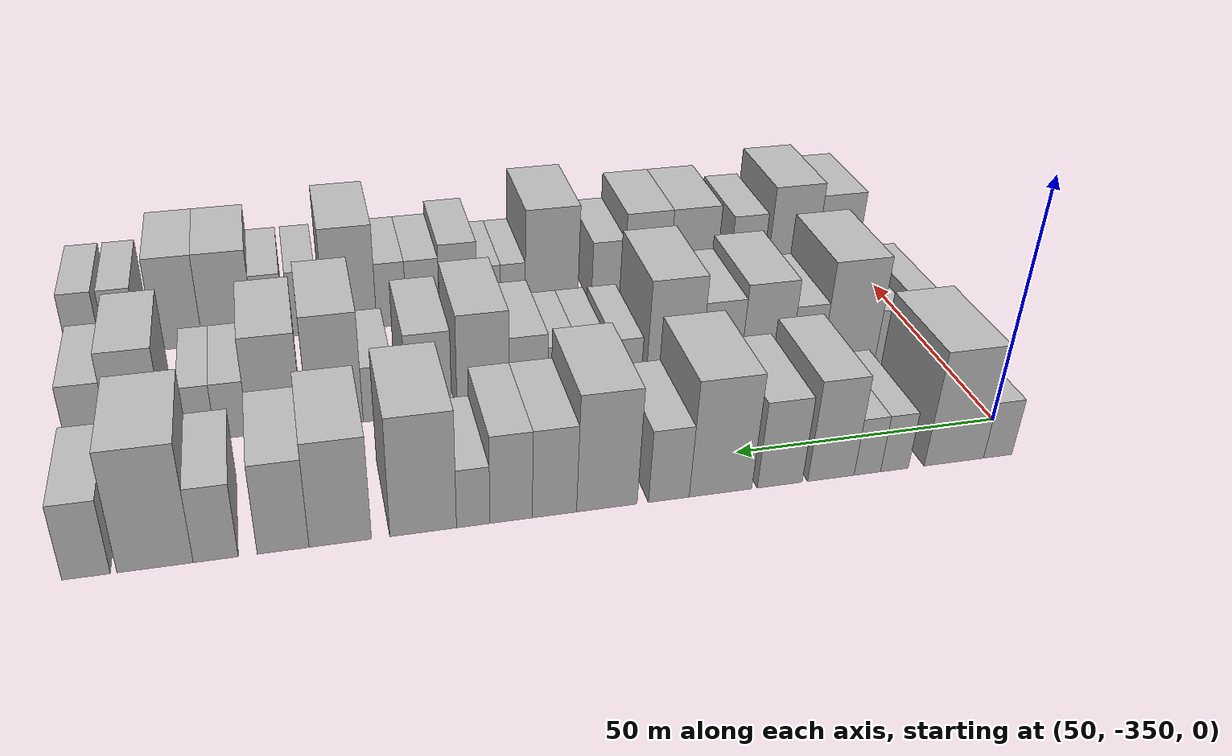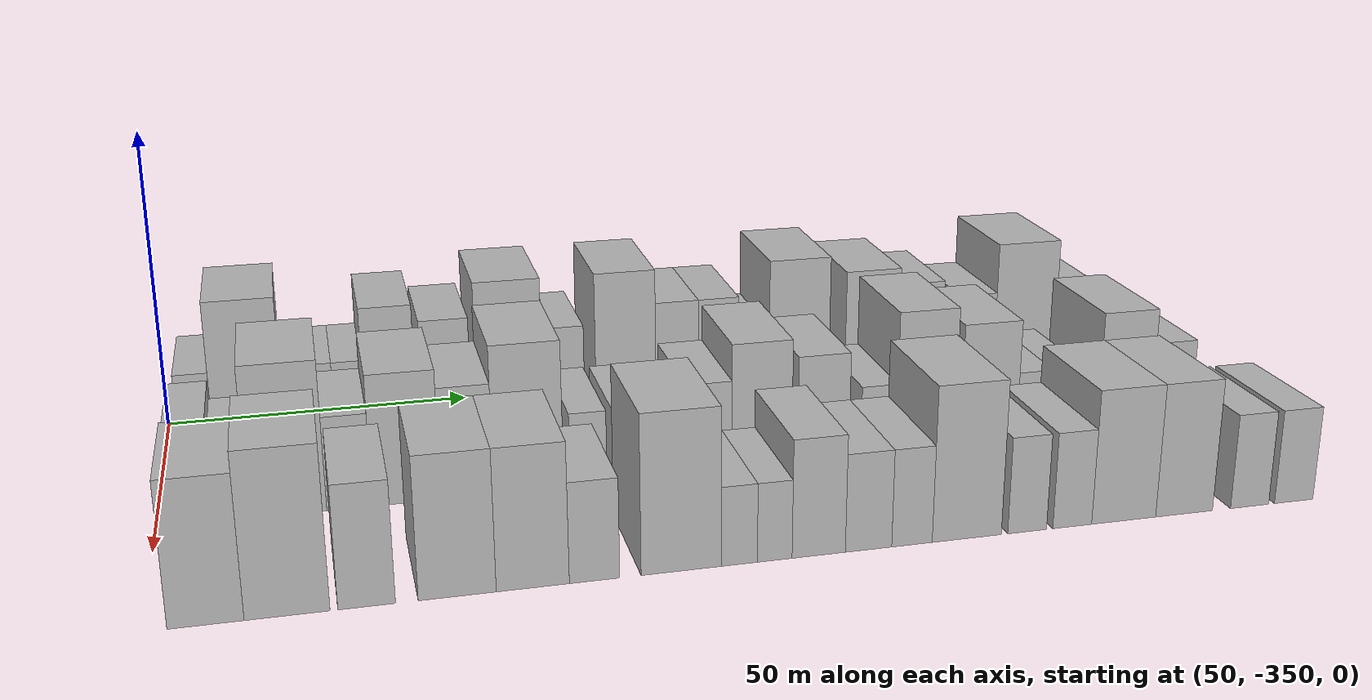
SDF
<sdf version="1.6">
 <world name="default">
  <model name="building_1">
   <static>1</static>
   <pose>50.0000 -345.2431 0 0.000000 0.000000 0.000000</pose>
   <link name="link">
    <pose>0 0 6.00 0 0 0</pose>
    <collision name="collision"><geometry><box><size>20.0000 5.5138 12.0000</size></box></geometry></collision>
    <visual name="visual">
     <cast_shadows>0</cast_shadows>
     <geometry><box><size>20.0000 5.5138 12.0000</size></box></geometry>
     <material>
      <script>
       <uri>model://HANNAS_wall/materials/scripts</uri>
       <uri>model://HANNAS_wall/materials/textures</uri>
       <name>vrc/HANNAS_wall</name>
      </script>
     </material>
    </visual>
   </link>
  </model>
  <model name="building_2">
   <static>1</static>
   <pose>50.0000 -336.7843 0 0.000000 0.000000 0.000000</pose>
   <link name="link">
    <pose>0 0 12.00 0 0 0</pose>
    <collision name="collision"><geometry><box><size>20.0000 11.4038 24.0000</size></box></geometry></collision>
    <visual name="visual">
     <cast_shadows>0</cast_shadows>
     <geometry><box><size>20.0000 11.4038 24.0000</size></box></geometry>
     <material>
      <script>
       <uri>model://HANNAS_wall/materials/scripts</uri>
       <uri>model://HANNAS_wall/materials/textures</uri>
       <name>vrc/HANNAS_wall</name>
      </script>
     </material>
    </visual>
   </link>
  </model>
  <model name="building_3">
   <static>1</static>
   <pose>50.0000 -325.4623 0 0.000000 0.000000 0.000000</pose>
   <link name="link">
    <pose>0 0 6.00 0 0 0</pose>
    <collision name="collision"><geometry><box><size>20.0000 5.2402 12.0000</size></box></geometry></collision>
    <visual name="visual">
     <cast_shadows>0</cast_shadows>
     <geometry><box><size>20.0000 5.2402 12.0000</size></box></geometry>
     <material>
      <script>
       <uri>model://HANNAS_wall/materials/scripts</uri>
       <uri>model://HANNAS_wall/materials/textures</uri>
       <name>vrc/HANNAS_wall</name>
      </script>
     </material>
    </visual>
   </link>
  </model>
  <model name="building_4">
   <static>1</static>
   <pose>50.0000 -320.3732 0 0.000000 0.000000 0.000000</pose>
   <link name="link">
    <pose>0 0 6.00 0 0 0</pose>
    <collision name="collision"><geometry><box><size>20.0000 4.9381 12.0000</size></box></geometry></collision>
    <visual name="visual">
     <cast_shadows>0</cast_shadows>
     <geometry><box><size>20.0000 4.9381 12.0000</size></box></geometry>
     <material>
      <script>
       <uri>model://HANNAS_wall/materials/scripts</uri>
       <uri>model://HANNAS_wall/materials/textures</uri>
       <name>vrc/HANNAS_wall</name>
      </script>
     </material>
    </visual>
   </link>
  </model>
  <model name="building_5">
   <static>1</static>
   <pose>50.0000 -313.5936 0 0.000000 0.000000 0.000000</pose>
   <link name="link">
    <pose>0 0 10.50 0 0 0</pose>
    <collision name="collision"><geometry><box><size>20.0000 8.6210 21.0000</size></box></geometry></collision>
    <visual name="visual">
     <cast_shadows>0</cast_shadows>
     <geometry><box><size>20.0000 8.6210 21.0000</size></box></geometry>
     <material>
      <script>
       <uri>model://HANNAS_wall/materials/scripts</uri>
       <uri>model://HANNAS_wall/materials/textures</uri>
       <name>vrc/HANNAS_wall</name>
      </script>
     </material>
    </visual>
   </link>
  </model>
  <model name="building_6">
   <static>1</static>
   <pose>50.0000 -304.1750 0 0.000000 0.000000 0.000000</pose>
   <link name="link">
    <pose>0 0 9.00 0 0 0</pose>
    <collision name="collision"><geometry><box><size>20.0000 8.2161 18.0000</size></box></geometry></collision>
    <visual name="visual">
     <cast_shadows>0</cast_shadows>
     <geometry><box><size>20.0000 8.2161 18.0000</size></box></geometry>
     <material>
      <script>
       <uri>model://HANNAS_wall/materials/scripts</uri>
       <uri>model://HANNAS_wall/materials/textures</uri>
       <name>vrc/HANNAS_wall</name>
      </script>
     </material>
    </visual>
   </link>
  </model>
  <model name="building_7">
   <static>1</static>
   <pose>50.0000 -293.4442 0 0.000000 0.000000 0.000000</pose>
   <link name="link">
    <pose>0 0 12.00 0 0 0</pose>
    <collision name="collision"><geometry><box><size>20.0000 11.2455 24.0000</size></box></geometry></collision>
    <visual name="visual">
     <cast_shadows>0</cast_shadows>
     <geometry><box><size>20.0000 11.2455 24.0000</size></box></geometry>
     <material>
      <script>
       <uri>model://HANNAS_wall/materials/scripts</uri>
       <uri>model://HANNAS_wall/materials/textures</uri>
       <name>vrc/HANNAS_wall</name>
      </script>
     </material>
    </visual>
   </link>
  </model>
  <model name="building_8">
   <static>1</static>
   <pose>50.0000 -284.2073 0 0.000000 0.000000 0.000000</pose>
   <link name="link">
    <pose>0 0 7.50 0 0 0</pose>
    <collision name="collision"><geometry><box><size>20.0000 7.2283 15.0000</size></box></geometry></collision>
    <visual name="visual">
     <cast_shadows>0</cast_shadows>
     <geometry><box><size>20.0000 7.2283 15.0000</size></box></geometry>
     <material>
      <script>
       <uri>model://HANNAS_wall/materials/scripts</uri>
       <uri>model://HANNAS_wall/materials/textures</uri>
       <name>vrc/HANNAS_wall</name>
      </script>
     </material>
    </visual>
   </link>
  </model>
  <model name="building_9">
   <static>1</static>
   <pose>50.0000 -273.3169 0 0.000000 0.000000 0.000000</pose>
   <link name="link">
    <pose>0 0 12.00 0 0 0</pose>
    <collision name="collision"><geometry><box><size>20.0000 10.5524 24.0000</size></box></geometry></collision>
    <visual name="visual">
     <cast_shadows>0</cast_shadows>
     <geometry><box><size>20.0000 10.5524 24.0000</size></box></geometry>
     <material>
      <script>
       <uri>model://HANNAS_wall/materials/scripts</uri>
       <uri>model://HANNAS_wall/materials/textures</uri>
       <name>vrc/HANNAS_wall</name>
      </script>
     </material>
    </visual>
   </link>
  </model>
  <model name="building_10">
   <static>1</static>
   <pose>50.0000 -264.2243 0 0.000000 0.000000 0.000000</pose>
   <link name="link">
    <pose>0 0 9.00 0 0 0</pose>
    <collision name="collision"><geometry><box><size>20.0000 7.6328 18.0000</size></box></geometry></collision>
    <visual name="visual">
     <cast_shadows>0</cast_shadows>
     <geometry><box><size>20.0000 7.6328 18.0000</size></box></geometry>
     <material>
      <script>
       <uri>model://HANNAS_wall/materials/scripts</uri>
       <uri>model://HANNAS_wall/materials/textures</uri>
       <name>vrc/HANNAS_wall</name>
      </script>
     </material>
    </visual>
   </link>
  </model>
  <model name="building_11">
   <static>1</static>
   <pose>50.0000 -256.8023 0 0.000000 0.000000 0.000000</pose>
   <link name="link">
    <pose>0 0 9.00 0 0 0</pose>
    <collision name="collision"><geometry><box><size>20.0000 7.2111 18.0000</size></box></geometry></collision>
    <visual name="visual">
     <cast_shadows>0</cast_shadows>
     <geometry><box><size>20.0000 7.2111 18.0000</size></box></geometry>
     <material>
      <script>
       <uri>model://HANNAS_wall/materials/scripts</uri>
       <uri>model://HANNAS_wall/materials/textures</uri>
       <name>vrc/HANNAS_wall</name>
      </script>
     </material>
    </visual>
   </link>
  </model>
  <model name="building_12">
   <static>1</static>
   <pose>50.0000 -250.4106 0 0.000000 0.000000 0.000000</pose>
   <link name="link">
    <pose>0 0 6.00 0 0 0</pose>
    <collision name="collision"><geometry><box><size>20.0000 5.5723 12.0000</size></box></geometry></collision>
    <visual name="visual">
     <cast_shadows>0</cast_shadows>
     <geometry><box><size>20.0000 5.5723 12.0000</size></box></geometry>
     <material>
      <script>
       <uri>model://HANNAS_wall/materials/scripts</uri>
       <uri>model://HANNAS_wall/materials/textures</uri>
       <name>vrc/HANNAS_wall</name>
      </script>
     </material>
    </visual>
   </link>
  </model>
  <model name="building_13">
   <static>1</static>
   <pose>50.0000 -242.0929 0 0.000000 0.000000 0.000000</pose>
   <link name="link">
    <pose>0 0 12.00 0 0 0</pose>
    <collision name="collision"><geometry><box><size>20.0000 11.0631 24.0000</size></box></geometry></collision>
    <visual name="visual">
     <cast_shadows>0</cast_shadows>
     <geometry><box><size>20.0000 11.0631 24.0000</size></box></geometry>
     <material>
      <script>
       <uri>model://HANNAS_wall/materials/scripts</uri>
       <uri>model://HANNAS_wall/materials/textures</uri>
       <name>vrc/HANNAS_wall</name>
      </script>
     </material>
    </visual>
   </link>
  </model>
  <model name="building_14">
   <static>1</static>
   <pose>50.0000 -228.4945 0 0.000000 0.000000 0.000000</pose>
   <link name="link">
    <pose>0 0 10.50 0 0 0</pose>
    <collision name="collision"><geometry><box><size>20.0000 10.1337 21.0000</size></box></geometry></collision>
    <visual name="visual">
     <cast_shadows>0</cast_shadows>
     <geometry><box><size>20.0000 10.1337 21.0000</size></box></geometry>
     <material>
      <script>
       <uri>model://HANNAS_wall/materials/scripts</uri>
       <uri>model://HANNAS_wall/materials/textures</uri>
       <name>vrc/HANNAS_wall</name>
      </script>
     </material>
    </visual>
   </link>
  </model>
  <model name="building_15">
   <static>1</static>
   <pose>50.0000 -219.2789 0 0.000000 0.000000 0.000000</pose>
   <link name="link">
    <pose>0 0 9.00 0 0 0</pose>
    <collision name="collision"><geometry><box><size>20.0000 8.2975 18.0000</size></box></geometry></collision>
    <visual name="visual">
     <cast_shadows>0</cast_shadows>
     <geometry><box><size>20.0000 8.2975 18.0000</size></box></geometry>
     <material>
      <script>
       <uri>model://HANNAS_wall/materials/scripts</uri>
       <uri>model://HANNAS_wall/materials/textures</uri>
       <name>vrc/HANNAS_wall</name>
      </script>
     </material>
    </visual>
   </link>
  </model>
  <model name="building_16">
   <static>1</static>
   <pose>50.0000 -208.5931 0 0.000000 0.000000 0.000000</pose>
   <link name="link">
    <pose>0 0 7.50 0 0 0</pose>
    <collision name="collision"><geometry><box><size>20.0000 7.0739 15.0000</size></box></geometry></collision>
    <visual name="visual">
     <cast_shadows>0</cast_shadows>
     <geometry><box><size>20.0000 7.0739 15.0000</size></box></geometry>
     <material>
      <script>
       <uri>model://HANNAS_wall/materials/scripts</uri>
       <uri>model://HANNAS_wall/materials/textures</uri>
       <name>vrc/HANNAS_wall</name>
      </script>
     </material>
    </visual>
   </link>
  </model>
  <model name="building_17">
   <static>1</static>
   <pose>50.0000 -199.1446 0 0.000000 0.000000 0.000000</pose>
   <link name="link">
    <pose>0 0 12.00 0 0 0</pose>
    <collision name="collision"><geometry><box><size>20.0000 11.8231 24.0000</size></box></geometry></collision>
    <visual name="visual">
     <cast_shadows>0</cast_shadows>
     <geometry><box><size>20.0000 11.8231 24.0000</size></box></geometry>
     <material>
      <script>
       <uri>model://HANNAS_wall/materials/scripts</uri>
       <uri>model://HANNAS_wall/materials/textures</uri>
       <name>vrc/HANNAS_wall</name>
      </script>
     </material>
    </visual>
   </link>
  </model>
  <model name="building_18">
   <static>1</static>
   <pose>50.0000 -188.5425 0 0.000000 0.000000 0.000000</pose>
   <link name="link">
    <pose>0 0 7.50 0 0 0</pose>
    <collision name="collision"><geometry><box><size>20.0000 7.3811 15.0000</size></box></geometry></collision>
    <visual name="visual">
     <cast_shadows>0</cast_shadows>
     <geometry><box><size>20.0000 7.3811 15.0000</size></box></geometry>
     <material>
      <script>
       <uri>model://HANNAS_wall/materials/scripts</uri>
       <uri>model://HANNAS_wall/materials/textures</uri>
       <name>vrc/HANNAS_wall</name>
      </script>
     </material>
    </visual>
   </link>
  </model>
  <model name="building_82">
   <static>1</static>
   <pose>82.0000 -344.9787 0 0.000000 0.000000 0.000000</pose>
   <link name="link">
    <pose>0 0 7.50 0 0 0</pose>
    <collision name="collision"><geometry><box><size>20.0000 6.0426 15.0000</size></box></geometry></collision>
    <visual name="visual">
     <cast_shadows>0</cast_shadows>
     <geometry><box><size>20.0000 6.0426 15.0000</size></box></geometry>
     <material>
      <script>
       <uri>model://HANNAS_wall/materials/scripts</uri>
       <uri>model://HANNAS_wall/materials/textures</uri>
       <name>vrc/HANNAS_wall</name>
      </script>
     </material>
    </visual>
   </link>
  </model>
  <model name="building_83">
   <static>1</static>
   <pose>82.0000 -339.3766 0 0.000000 0.000000 0.000000</pose>
   <link name="link">
    <pose>0 0 6.00 0 0 0</pose>
    <collision name="collision"><geometry><box><size>20.0000 5.1616 12.0000</size></box></geometry></collision>
    <visual name="visual">
     <cast_shadows>0</cast_shadows>
     <geometry><box><size>20.0000 5.1616 12.0000</size></box></geometry>
     <material>
      <script>
       <uri>model://HANNAS_wall/materials/scripts</uri>
       <uri>model://HANNAS_wall/materials/textures</uri>
       <name>vrc/HANNAS_wall</name>
      </script>
     </material>
    </visual>
   </link>
  </model>
  <model name="building_84">
   <static>1</static>
   <pose>82.0000 -331.1213 0 0.000000 0.000000 0.000000</pose>
   <link name="link">
    <pose>0 0 12.00 0 0 0</pose>
    <collision name="collision"><geometry><box><size>20.0000 11.3489 24.0000</size></box></geometry></collision>
    <visual name="visual">
     <cast_shadows>0</cast_shadows>
     <geometry><box><size>20.0000 11.3489 24.0000</size></box></geometry>
     <material>
      <script>
       <uri>model://HANNAS_wall/materials/scripts</uri>
       <uri>model://HANNAS_wall/materials/textures</uri>
       <name>vrc/HANNAS_wall</name>
      </script>
     </material>
    </visual>
   </link>
  </model>
  <model name="building_85">
   <static>1</static>
   <pose>82.0000 -322.1058 0 0.000000 0.000000 0.000000</pose>
   <link name="link">
    <pose>0 0 7.50 0 0 0</pose>
    <collision name="collision"><geometry><box><size>20.0000 6.6821 15.0000</size></box></geometry></collision>
    <visual name="visual">
     <cast_shadows>0</cast_shadows>
     <geometry><box><size>20.0000 6.6821 15.0000</size></box></geometry>
     <material>
      <script>
       <uri>model://HANNAS_wall/materials/scripts</uri>
       <uri>model://HANNAS_wall/materials/textures</uri>
       <name>vrc/HANNAS_wall</name>
      </script>
     </material>
    </visual>
   </link>
  </model>
  <model name="building_86">
   <static>1</static>
   <pose>82.0000 -313.6438 0 0.000000 0.000000 0.000000</pose>
   <link name="link">
    <pose>0 0 10.50 0 0 0</pose>
    <collision name="collision"><geometry><box><size>20.0000 10.2419 21.0000</size></box></geometry></collision>
    <visual name="visual">
     <cast_shadows>0</cast_shadows>
     <geometry><box><size>20.0000 10.2419 21.0000</size></box></geometry>
     <material>
      <script>
       <uri>model://HANNAS_wall/materials/scripts</uri>
       <uri>model://HANNAS_wall/materials/textures</uri>
       <name>vrc/HANNAS_wall</name>
      </script>
     </material>
    </visual>
   </link>
  </model>
  <model name="building_87">
   <static>1</static>
   <pose>82.0000 -304.4915 0 0.000000 0.000000 0.000000</pose>
   <link name="link">
    <pose>0 0 9.00 0 0 0</pose>
    <collision name="collision"><geometry><box><size>20.0000 8.0625 18.0000</size></box></geometry></collision>
    <visual name="visual">
     <cast_shadows>0</cast_shadows>
     <geometry><box><size>20.0000 8.0625 18.0000</size></box></geometry>
     <material>
      <script>
       <uri>model://HANNAS_wall/materials/scripts</uri>
       <uri>model://HANNAS_wall/materials/textures</uri>
       <name>vrc/HANNAS_wall</name>
      </script>
     </material>
    </visual>
   </link>
  </model>
  <model name="building_88">
   <static>1</static>
   <pose>82.0000 -295.0354 0 0.000000 0.000000 0.000000</pose>
   <link name="link">
    <pose>0 0 12.00 0 0 0</pose>
    <collision name="collision"><geometry><box><size>20.0000 10.8496 24.0000</size></box></geometry></collision>
    <visual name="visual">
     <cast_shadows>0</cast_shadows>
     <geometry><box><size>20.0000 10.8496 24.0000</size></box></geometry>
     <material>
      <script>
       <uri>model://HANNAS_wall/materials/scripts</uri>
       <uri>model://HANNAS_wall/materials/textures</uri>
       <name>vrc/HANNAS_wall</name>
      </script>
     </material>
    </visual>
   </link>
  </model>
  <model name="building_89">
   <static>1</static>
   <pose>82.0000 -285.7194 0 0.000000 0.000000 0.000000</pose>
   <link name="link">
    <pose>0 0 6.00 0 0 0</pose>
    <collision name="collision"><geometry><box><size>20.0000 5.7826 12.0000</size></box></geometry></collision>
    <visual name="visual">
     <cast_shadows>0</cast_shadows>
     <geometry><box><size>20.0000 5.7826 12.0000</size></box></geometry>
     <material>
      <script>
       <uri>model://HANNAS_wall/materials/scripts</uri>
       <uri>model://HANNAS_wall/materials/textures</uri>
       <name>vrc/HANNAS_wall</name>
      </script>
     </material>
    </visual>
   </link>
  </model>
  <model name="building_90">
   <static>1</static>
   <pose>82.0000 -279.0039 0 0.000000 0.000000 0.000000</pose>
   <link name="link">
    <pose>0 0 6.00 0 0 0</pose>
    <collision name="collision"><geometry><box><size>20.0000 5.6483 12.0000</size></box></geometry></collision>
    <visual name="visual">
     <cast_shadows>0</cast_shadows>
     <geometry><box><size>20.0000 5.6483 12.0000</size></box></geometry>
     <material>
      <script>
       <uri>model://HANNAS_wall/materials/scripts</uri>
       <uri>model://HANNAS_wall/materials/textures</uri>
       <name>vrc/HANNAS_wall</name>
      </script>
     </material>
    </visual>
   </link>
  </model>
  <model name="building_91">
   <static>1</static>
   <pose>82.0000 -273.2246 0 0.000000 0.000000 0.000000</pose>
   <link name="link">
    <pose>0 0 6.00 0 0 0</pose>
    <collision name="collision"><geometry><box><size>20.0000 5.9104 12.0000</size></box></geometry></collision>
    <visual name="visual">
     <cast_shadows>0</cast_shadows>
     <geometry><box><size>20.0000 5.9104 12.0000</size></box></geometry>
     <material>
      <script>
       <uri>model://HANNAS_wall/materials/scripts</uri>
       <uri>model://HANNAS_wall/materials/textures</uri>
       <name>vrc/HANNAS_wall</name>
      </script>
     </material>
    </visual>
   </link>
  </model>
  <model name="building_92">
   <static>1</static>
   <pose>82.0000 -266.5337 0 0.000000 0.000000 0.000000</pose>
   <link name="link">
    <pose>0 0 7.50 0 0 0</pose>
    <collision name="collision"><geometry><box><size>20.0000 7.4715 15.0000</size></box></geometry></collision>
    <visual name="visual">
     <cast_shadows>0</cast_shadows>
     <geometry><box><size>20.0000 7.4715 15.0000</size></box></geometry>
     <material>
      <script>
       <uri>model://HANNAS_wall/materials/scripts</uri>
       <uri>model://HANNAS_wall/materials/textures</uri>
       <name>vrc/HANNAS_wall</name>
      </script>
     </material>
    </visual>
   </link>
  </model>
  <model name="building_93">
   <static>1</static>
   <pose>82.0000 -257.8873 0 0.000000 0.000000 0.000000</pose>
   <link name="link">
    <pose>0 0 10.50 0 0 0</pose>
    <collision name="collision"><geometry><box><size>20.0000 9.8212 21.0000</size></box></geometry></collision>
    <visual name="visual">
     <cast_shadows>0</cast_shadows>
     <geometry><box><size>20.0000 9.8212 21.0000</size></box></geometry>
     <material>
      <script>
       <uri>model://HANNAS_wall/materials/scripts</uri>
       <uri>model://HANNAS_wall/materials/textures</uri>
       <name>vrc/HANNAS_wall</name>
      </script>
     </material>
    </visual>
   </link>
  </model>
  <model name="building_94">
   <static>1</static>
   <pose>82.0000 -247.6939 0 0.000000 0.000000 0.000000</pose>
   <link name="link">
    <pose>0 0 9.00 0 0 0</pose>
    <collision name="collision"><geometry><box><size>20.0000 8.5656 18.0000</size></box></geometry></collision>
    <visual name="visual">
     <cast_shadows>0</cast_shadows>
     <geometry><box><size>20.0000 8.5656 18.0000</size></box></geometry>
     <material>
      <script>
       <uri>model://HANNAS_wall/materials/scripts</uri>
       <uri>model://HANNAS_wall/materials/textures</uri>
       <name>vrc/HANNAS_wall</name>
      </script>
     </material>
    </visual>
   </link>
  </model>
  <model name="building_95">
   <static>1</static>
   <pose>82.0000 -238.4251 0 0.000000 0.000000 0.000000</pose>
   <link name="link">
    <pose>0 0 6.00 0 0 0</pose>
    <collision name="collision"><geometry><box><size>20.0000 5.9721 12.0000</size></box></geometry></collision>
    <visual name="visual">
     <cast_shadows>0</cast_shadows>
     <geometry><box><size>20.0000 5.9721 12.0000</size></box></geometry>
     <material>
      <script>
       <uri>model://HANNAS_wall/materials/scripts</uri>
       <uri>model://HANNAS_wall/materials/textures</uri>
       <name>vrc/HANNAS_wall</name>
      </script>
     </material>
    </visual>
   </link>
  </model>
  <model name="building_96">
   <static>1</static>
   <pose>82.0000 -230.4019 0 0.000000 0.000000 0.000000</pose>
   <link name="link">
    <pose>0 0 12.00 0 0 0</pose>
    <collision name="collision"><geometry><box><size>20.0000 10.0741 24.0000</size></box></geometry></collision>
    <visual name="visual">
     <cast_shadows>0</cast_shadows>
     <geometry><box><size>20.0000 10.0741 24.0000</size></box></geometry>
     <material>
      <script>
       <uri>model://HANNAS_wall/materials/scripts</uri>
       <uri>model://HANNAS_wall/materials/textures</uri>
       <name>vrc/HANNAS_wall</name>
      </script>
     </material>
    </visual>
   </link>
  </model>
  <model name="building_97">
   <static>1</static>
   <pose>82.0000 -219.4289 0 0.000000 0.000000 0.000000</pose>
   <link name="link">
    <pose>0 0 10.50 0 0 0</pose>
    <collision name="collision"><geometry><box><size>20.0000 9.8720 21.0000</size></box></geometry></collision>
    <visual name="visual">
     <cast_shadows>0</cast_shadows>
     <geometry><box><size>20.0000 9.8720 21.0000</size></box></geometry>
     <material>
      <script>
       <uri>model://HANNAS_wall/materials/scripts</uri>
       <uri>model://HANNAS_wall/materials/textures</uri>
       <name>vrc/HANNAS_wall</name>
      </script>
     </material>
    </visual>
   </link>
  </model>
  <model name="building_98">
   <static>1</static>
   <pose>82.0000 -211.5435 0 0.000000 0.000000 0.000000</pose>
   <link name="link">
    <pose>0 0 6.00 0 0 0</pose>
    <collision name="collision"><geometry><box><size>20.0000 5.8987 12.0000</size></box></geometry></collision>
    <visual name="visual">
     <cast_shadows>0</cast_shadows>
     <geometry><box><size>20.0000 5.8987 12.0000</size></box></geometry>
     <material>
      <script>
       <uri>model://HANNAS_wall/materials/scripts</uri>
       <uri>model://HANNAS_wall/materials/textures</uri>
       <name>vrc/HANNAS_wall</name>
      </script>
     </material>
    </visual>
   </link>
  </model>
  <model name="building_99">
   <static>1</static>
   <pose>82.0000 -205.8228 0 0.000000 0.000000 0.000000</pose>
   <link name="link">
    <pose>0 0 6.00 0 0 0</pose>
    <collision name="collision"><geometry><box><size>20.0000 5.5427 12.0000</size></box></geometry></collision>
    <visual name="visual">
     <cast_shadows>0</cast_shadows>
     <geometry><box><size>20.0000 5.5427 12.0000</size></box></geometry>
     <material>
      <script>
       <uri>model://HANNAS_wall/materials/scripts</uri>
       <uri>model://HANNAS_wall/materials/textures</uri>
       <name>vrc/HANNAS_wall</name>
      </script>
     </material>
    </visual>
   </link>
  </model>
  <model name="building_100">
   <static>1</static>
   <pose>82.0000 -195.2191 0 0.000000 0.000000 0.000000</pose>
   <link name="link">
    <pose>0 0 10.50 0 0 0</pose>
    <collision name="collision"><geometry><box><size>20.0000 9.6647 21.0000</size></box></geometry></collision>
    <visual name="visual">
     <cast_shadows>0</cast_shadows>
     <geometry><box><size>20.0000 9.6647 21.0000</size></box></geometry>
     <material>
      <script>
       <uri>model://HANNAS_wall/materials/scripts</uri>
       <uri>model://HANNAS_wall/materials/textures</uri>
       <name>vrc/HANNAS_wall</name>
      </script>
     </material>
    </visual>
   </link>
  </model>
  <model name="building_101">
   <static>1</static>
   <pose>82.0000 -186.6621 0 0.000000 0.000000 0.000000</pose>
   <link name="link">
    <pose>0 0 7.50 0 0 0</pose>
    <collision name="collision"><geometry><box><size>20.0000 7.4494 15.0000</size></box></geometry></collision>
    <visual name="visual">
     <cast_shadows>0</cast_shadows>
     <geometry><box><size>20.0000 7.4494 15.0000</size></box></geometry>
     <material>
      <script>
       <uri>model://HANNAS_wall/materials/scripts</uri>
       <uri>model://HANNAS_wall/materials/textures</uri>
       <name>vrc/HANNAS_wall</name>
      </script>
     </material>
    </visual>
   </link>
  </model>
  <model name="building_158">
   <static>1</static>
   <pose>114.0000 -342.1437 0 0.000000 0.000000 0.000000</pose>
   <link name="link">
    <pose>0 0 10.50 0 0 0</pose>
    <collision name="collision"><geometry><box><size>20.0000 9.7125 21.0000</size></box></geometry></collision>
    <visual name="visual">
     <cast_shadows>0</cast_shadows>
     <geometry><box><size>20.0000 9.7125 21.0000</size></box></geometry>
     <material>
      <script>
       <uri>model://HANNAS_wall/materials/scripts</uri>
       <uri>model://HANNAS_wall/materials/textures</uri>
       <name>vrc/HANNAS_wall</name>
      </script>
     </material>
    </visual>
   </link>
  </model>
  <model name="building_159">
   <static>1</static>
   <pose>114.0000 -331.7665 0 0.000000 0.000000 0.000000</pose>
   <link name="link">
    <pose>0 0 12.00 0 0 0</pose>
    <collision name="collision"><geometry><box><size>20.0000 11.0420 24.0000</size></box></geometry></collision>
    <visual name="visual">
     <cast_shadows>0</cast_shadows>
     <geometry><box><size>20.0000 11.0420 24.0000</size></box></geometry>
     <material>
      <script>
       <uri>model://HANNAS_wall/materials/scripts</uri>
       <uri>model://HANNAS_wall/materials/textures</uri>
       <name>vrc/HANNAS_wall</name>
      </script>
     </material>
    </visual>
   </link>
  </model>
  <model name="building_160">
   <static>1</static>
   <pose>114.0000 -321.4630 0 0.000000 0.000000 0.000000</pose>
   <link name="link">
    <pose>0 0 9.00 0 0 0</pose>
    <collision name="collision"><geometry><box><size>20.0000 7.5650 18.0000</size></box></geometry></collision>
    <visual name="visual">
     <cast_shadows>0</cast_shadows>
     <geometry><box><size>20.0000 7.5650 18.0000</size></box></geometry>
     <material>
      <script>
       <uri>model://HANNAS_wall/materials/scripts</uri>
       <uri>model://HANNAS_wall/materials/textures</uri>
       <name>vrc/HANNAS_wall</name>
      </script>
     </material>
    </visual>
   </link>
  </model>
  <model name="building_161">
   <static>1</static>
   <pose>114.0000 -309.4385 0 0.000000 0.000000 0.000000</pose>
   <link name="link">
    <pose>0 0 10.50 0 0 0</pose>
    <collision name="collision"><geometry><box><size>20.0000 10.4842 21.0000</size></box></geometry></collision>
    <visual name="visual">
     <cast_shadows>0</cast_shadows>
     <geometry><box><size>20.0000 10.4842 21.0000</size></box></geometry>
     <material>
      <script>
       <uri>model://HANNAS_wall/materials/scripts</uri>
       <uri>model://HANNAS_wall/materials/textures</uri>
       <name>vrc/HANNAS_wall</name>
      </script>
     </material>
    </visual>
   </link>
  </model>
  <model name="building_162">
   <static>1</static>
   <pose>114.0000 -299.1906 0 0.000000 0.000000 0.000000</pose>
   <link name="link">
    <pose>0 0 10.50 0 0 0</pose>
    <collision name="collision"><geometry><box><size>20.0000 10.0115 21.0000</size></box></geometry></collision>
    <visual name="visual">
     <cast_shadows>0</cast_shadows>
     <geometry><box><size>20.0000 10.0115 21.0000</size></box></geometry>
     <material>
      <script>
       <uri>model://HANNAS_wall/materials/scripts</uri>
       <uri>model://HANNAS_wall/materials/textures</uri>
       <name>vrc/HANNAS_wall</name>
      </script>
     </material>
    </visual>
   </link>
  </model>
  <model name="building_163">
   <static>1</static>
   <pose>114.0000 -290.6768 0 0.000000 0.000000 0.000000</pose>
   <link name="link">
    <pose>0 0 7.50 0 0 0</pose>
    <collision name="collision"><geometry><box><size>20.0000 7.0162 15.0000</size></box></geometry></collision>
    <visual name="visual">
     <cast_shadows>0</cast_shadows>
     <geometry><box><size>20.0000 7.0162 15.0000</size></box></geometry>
     <material>
      <script>
       <uri>model://HANNAS_wall/materials/scripts</uri>
       <uri>model://HANNAS_wall/materials/textures</uri>
       <name>vrc/HANNAS_wall</name>
      </script>
     </material>
    </visual>
   </link>
  </model>
  <model name="building_164">
   <static>1</static>
   <pose>114.0000 -278.4583 0 0.000000 0.000000 0.000000</pose>
   <link name="link">
    <pose>0 0 12.00 0 0 0</pose>
    <collision name="collision"><geometry><box><size>20.0000 11.4208 24.0000</size></box></geometry></collision>
    <visual name="visual">
     <cast_shadows>0</cast_shadows>
     <geometry><box><size>20.0000 11.4208 24.0000</size></box></geometry>
     <material>
      <script>
       <uri>model://HANNAS_wall/materials/scripts</uri>
       <uri>model://HANNAS_wall/materials/textures</uri>
       <name>vrc/HANNAS_wall</name>
      </script>
     </material>
    </visual>
   </link>
  </model>
  <model name="building_165">
   <static>1</static>
   <pose>114.0000 -270.1314 0 0.000000 0.000000 0.000000</pose>
   <link name="link">
    <pose>0 0 6.00 0 0 0</pose>
    <collision name="collision"><geometry><box><size>20.0000 5.2328 12.0000</size></box></geometry></collision>
    <visual name="visual">
     <cast_shadows>0</cast_shadows>
     <geometry><box><size>20.0000 5.2328 12.0000</size></box></geometry>
     <material>
      <script>
       <uri>model://HANNAS_wall/materials/scripts</uri>
       <uri>model://HANNAS_wall/materials/textures</uri>
       <name>vrc/HANNAS_wall</name>
      </script>
     </material>
    </visual>
   </link>
  </model>
  <model name="building_166">
   <static>1</static>
   <pose>114.0000 -264.9786 0 0.000000 0.000000 0.000000</pose>
   <link name="link">
    <pose>0 0 6.00 0 0 0</pose>
    <collision name="collision"><geometry><box><size>20.0000 5.0729 12.0000</size></box></geometry></collision>
    <visual name="visual">
     <cast_shadows>0</cast_shadows>
     <geometry><box><size>20.0000 5.0729 12.0000</size></box></geometry>
     <material>
      <script>
       <uri>model://HANNAS_wall/materials/scripts</uri>
       <uri>model://HANNAS_wall/materials/textures</uri>
       <name>vrc/HANNAS_wall</name>
      </script>
     </material>
    </visual>
   </link>
  </model>
  <model name="building_167">
   <static>1</static>
   <pose>114.0000 -258.4959 0 0.000000 0.000000 0.000000</pose>
   <link name="link">
    <pose>0 0 9.00 0 0 0</pose>
    <collision name="collision"><geometry><box><size>20.0000 7.8925 18.0000</size></box></geometry></collision>
    <visual name="visual">
     <cast_shadows>0</cast_shadows>
     <geometry><box><size>20.0000 7.8925 18.0000</size></box></geometry>
     <material>
      <script>
       <uri>model://HANNAS_wall/materials/scripts</uri>
       <uri>model://HANNAS_wall/materials/textures</uri>
       <name>vrc/HANNAS_wall</name>
      </script>
     </material>
    </visual>
   </link>
  </model>
  <model name="building_168">
   <static>1</static>
   <pose>114.0000 -251.0713 0 0.000000 0.000000 0.000000</pose>
   <link name="link">
    <pose>0 0 7.50 0 0 0</pose>
    <collision name="collision"><geometry><box><size>20.0000 6.9567 15.0000</size></box></geometry></collision>
    <visual name="visual">
     <cast_shadows>0</cast_shadows>
     <geometry><box><size>20.0000 6.9567 15.0000</size></box></geometry>
     <material>
      <script>
       <uri>model://HANNAS_wall/materials/scripts</uri>
       <uri>model://HANNAS_wall/materials/textures</uri>
       <name>vrc/HANNAS_wall</name>
      </script>
     </material>
    </visual>
   </link>
  </model>
  <model name="building_169">
   <static>1</static>
   <pose>114.0000 -244.5166 0 0.000000 0.000000 0.000000</pose>
   <link name="link">
    <pose>0 0 7.50 0 0 0</pose>
    <collision name="collision"><geometry><box><size>20.0000 6.1526 15.0000</size></box></geometry></collision>
    <visual name="visual">
     <cast_shadows>0</cast_shadows>
     <geometry><box><size>20.0000 6.1526 15.0000</size></box></geometry>
     <material>
      <script>
       <uri>model://HANNAS_wall/materials/scripts</uri>
       <uri>model://HANNAS_wall/materials/textures</uri>
       <name>vrc/HANNAS_wall</name>
      </script>
     </material>
    </visual>
   </link>
  </model>
  <model name="building_170">
   <static>1</static>
   <pose>114.0000 -236.1045 0 0.000000 0.000000 0.000000</pose>
   <link name="link">
    <pose>0 0 12.00 0 0 0</pose>
    <collision name="collision"><geometry><box><size>20.0000 10.6715 24.0000</size></box></geometry></collision>
    <visual name="visual">
     <cast_shadows>0</cast_shadows>
     <geometry><box><size>20.0000 10.6715 24.0000</size></box></geometry>
     <material>
      <script>
       <uri>model://HANNAS_wall/materials/scripts</uri>
       <uri>model://HANNAS_wall/materials/textures</uri>
       <name>vrc/HANNAS_wall</name>
      </script>
     </material>
    </visual>
   </link>
  </model>
  <model name="building_171">
   <static>1</static>
   <pose>114.0000 -226.7245 0 0.000000 0.000000 0.000000</pose>
   <link name="link">
    <pose>0 0 7.50 0 0 0</pose>
    <collision name="collision"><geometry><box><size>20.0000 6.0885 15.0000</size></box></geometry></collision>
    <visual name="visual">
     <cast_shadows>0</cast_shadows>
     <geometry><box><size>20.0000 6.0885 15.0000</size></box></geometry>
     <material>
      <script>
       <uri>model://HANNAS_wall/materials/scripts</uri>
       <uri>model://HANNAS_wall/materials/textures</uri>
       <name>vrc/HANNAS_wall</name>
      </script>
     </material>
    </visual>
   </link>
  </model>
  <model name="building_172">
   <static>1</static>
   <pose>114.0000 -219.5933 0 0.000000 0.000000 0.000000</pose>
   <link name="link">
    <pose>0 0 7.50 0 0 0</pose>
    <collision name="collision"><geometry><box><size>20.0000 6.1740 15.0000</size></box></geometry></collision>
    <visual name="visual">
     <cast_shadows>0</cast_shadows>
     <geometry><box><size>20.0000 6.1740 15.0000</size></box></geometry>
     <material>
      <script>
       <uri>model://HANNAS_wall/materials/scripts</uri>
       <uri>model://HANNAS_wall/materials/textures</uri>
       <name>vrc/HANNAS_wall</name>
      </script>
     </material>
    </visual>
   </link>
  </model>
  <model name="building_173">
   <static>1</static>
   <pose>114.0000 -211.3377 0 0.000000 0.000000 0.000000</pose>
   <link name="link">
    <pose>0 0 10.50 0 0 0</pose>
    <collision name="collision"><geometry><box><size>20.0000 10.3371 21.0000</size></box></geometry></collision>
    <visual name="visual">
     <cast_shadows>0</cast_shadows>
     <geometry><box><size>20.0000 10.3371 21.0000</size></box></geometry>
     <material>
      <script>
       <uri>model://HANNAS_wall/materials/scripts</uri>
       <uri>model://HANNAS_wall/materials/textures</uri>
       <name>vrc/HANNAS_wall</name>
      </script>
     </material>
    </visual>
   </link>
  </model>
  <model name="building_174">
   <static>1</static>
   <pose>114.0000 -201.4974 0 0.000000 0.000000 0.000000</pose>
   <link name="link">
    <pose>0 0 10.50 0 0 0</pose>
    <collision name="collision"><geometry><box><size>20.0000 9.3435 21.0000</size></box></geometry></collision>
    <visual name="visual">
     <cast_shadows>0</cast_shadows>
     <geometry><box><size>20.0000 9.3435 21.0000</size></box></geometry>
     <material>
      <script>
       <uri>model://HANNAS_wall/materials/scripts</uri>
       <uri>model://HANNAS_wall/materials/textures</uri>
       <name>vrc/HANNAS_wall</name>
      </script>
     </material>
    </visual>
   </link>
  </model>
  <model name="building_175">
   <static>1</static>
   <pose>114.0000 -190.6413 0 0.000000 0.000000 0.000000</pose>
   <link name="link">
    <pose>0 0 7.50 0 0 0</pose>
    <collision name="collision"><geometry><box><size>20.0000 6.3685 15.0000</size></box></geometry></collision>
    <visual name="visual">
     <cast_shadows>0</cast_shadows>
     <geometry><box><size>20.0000 6.3685 15.0000</size></box></geometry>
     <material>
      <script>
       <uri>model://HANNAS_wall/materials/scripts</uri>
       <uri>model://HANNAS_wall/materials/textures</uri>
       <name>vrc/HANNAS_wall</name>
      </script>
     </material>
    </visual>
   </link>
  </model>
  <model name="building_176">
   <static>1</static>
   <pose>114.0000 -183.2062 0 0.000000 0.000000 0.000000</pose>
   <link name="link">
    <pose>0 0 7.50 0 0 0</pose>
    <collision name="collision"><geometry><box><size>20.0000 6.5018 15.0000</size></box></geometry></collision>
    <visual name="visual">
     <cast_shadows>0</cast_shadows>
     <geometry><box><size>20.0000 6.5018 15.0000</size></box></geometry>
     <material>
      <script>
       <uri>model://HANNAS_wall/materials/scripts</uri>
       <uri>model://HANNAS_wall/materials/textures</uri>
       <name>vrc/HANNAS_wall</name>
      </script>
     </material>
    </visual>
   </link>
  </model>
 </world>
</sdf>
